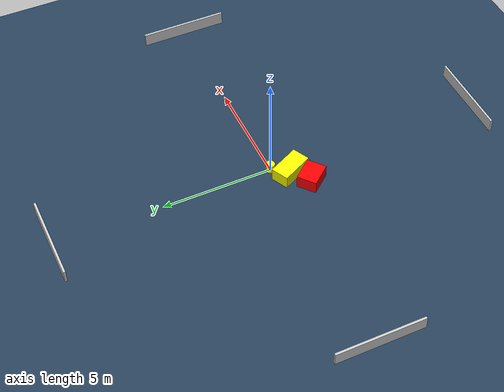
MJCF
<?xml version="1.0" ?>
<mujoco model="generated_environment">
  <option timestep="0.01" integrator="RK4" cone="elliptic"/>
  <default>
    <geom density="1"/>
  </default>
  <asset>
    <texture builtin="gradient" height="3072" name="skybox" rgb1="0.3 0.5 0.7" rgb2="0 0 0" type="skybox" width="512"/>
    <texture builtin="checker" height="300" name="groundplane" rgb1="0.2 0.3 0.4" rgb2="0.1 0.2 0.3" type="2d" width="300"/>
    <material name="groundplane" reflectance="0.2" texrepeat="5 5" texture="groundplane"/>
  </asset>
  <worldbody>
    <light dir="0 0 -1" directional="true" pos="0 0 1.5"/>
    <geom condim="3" friction="0.5 0.005 0.001" material="groundplane" name="floor" pos="0 0 0" size="0 0 0.05" type="plane"/>
    <body name="walls">
      <geom name="wall_1" condim="4" pos="-10.0 0.0 0.3" rgba="0.800000011920929 0.800000011920929 0.800000011920929 1.0" size="0.05 2.0 0.3" type="box"/>
      <geom name="wall_2" condim="4" pos="10.0 0.0 0.3" rgba="0.800000011920929 0.800000011920929 0.800000011920929 1.0" size="0.05 2.0 0.3" type="box"/>
      <geom name="wall_3" condim="4" pos="0.0 -10.0 0.3" rgba="0.800000011920929 0.800000011920929 0.800000011920929 1.0" size="2.0 0.05 0.3" type="box"/>
      <geom name="wall_4" condim="4" pos="0.0 10.0 0.3" rgba="0.800000011920929 0.800000011920929 0.800000011920929 1.0" size="2.0 0.05 0.3" type="box"/>
    </body>
    <body name="robot">
      <joint name="joint_x" type="slide" pos="0 0 0" axis="1 0 0"/>
      <joint name="joint_y" type="slide" pos="0 0 0" axis="0 1 0"/>
      <geom name="robot" type="cylinder" pos="0.0 0.0 0.2" size="0.2 0.2 0.0" mass="5.0" friction="1.0 0.005 0.0001" condim="4" rgba="1.0 1.0 0.0 1.0"/>
    </body>
    <body name="obstacle_1_movable">
      <geom name="obstacle_1_movable" condim="4" pos="-0.5322264741304789 -0.7057494567651906 0.3" euler="0 0 26.258920379324874" friction="0.0 0.005 0.001" rgba="1.0 1.0 0.0 1.0" size="0.40983008032341495 0.7634672898481405 0.3" type="box" mass="0.1"/>
      <joint type="free"/>
    </body>
    <body name="obstacle_2_static">
      <geom name="obstacle_2_static" condim="4" pos="-1.326914410965935 -1.3406852837702565 0.3" euler="0 0 309.6570491461569" friction="0.0 0.005 0.001" rgba="1.0 0.0 0.0 1.0" size="0.5523956365533342 0.4505789295305367 0.3" type="box"/>
    </body>
  </worldbody>
  <actuator>
    <motor name="actuator_x" joint="joint_x" gear="1" ctrlrange="-1 1"/>
    <motor name="actuator_y" joint="joint_y" gear="1" ctrlrange="-1 1"/>
  </actuator>
</mujoco>
